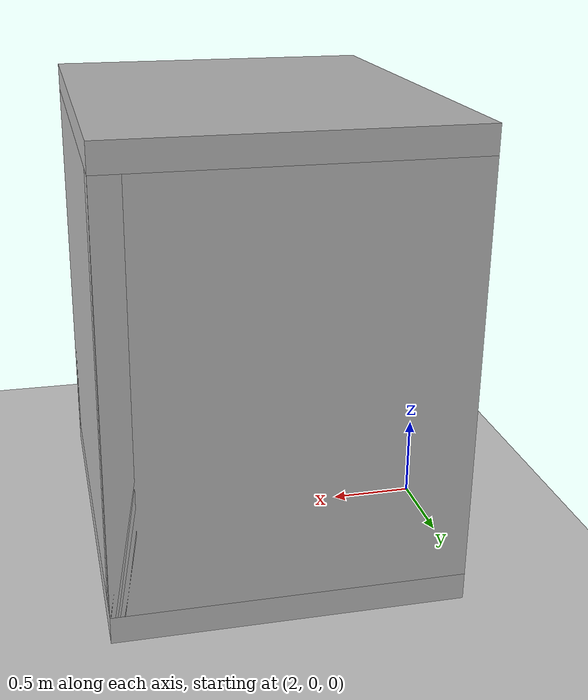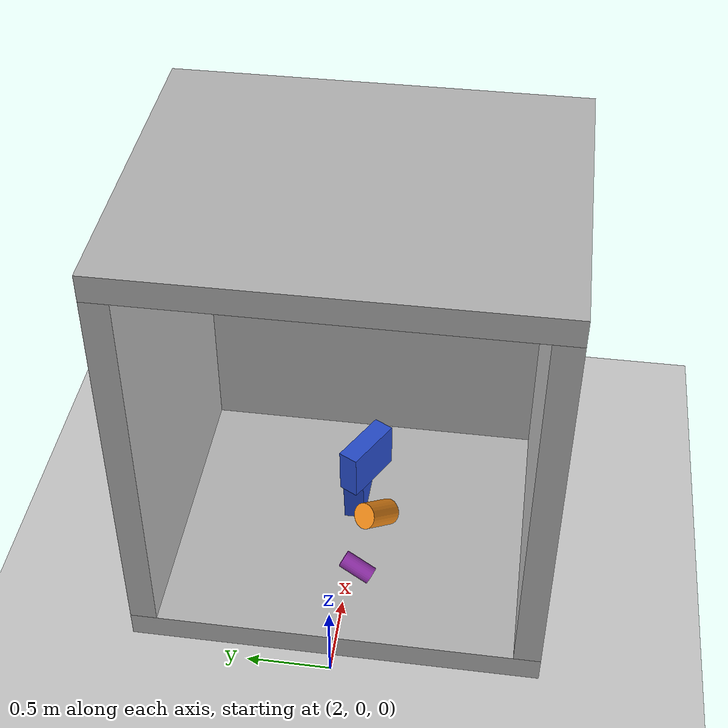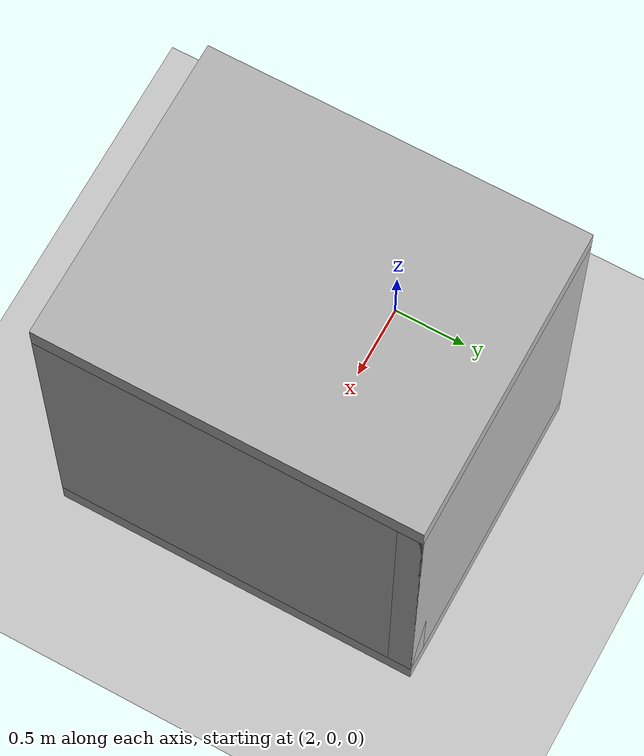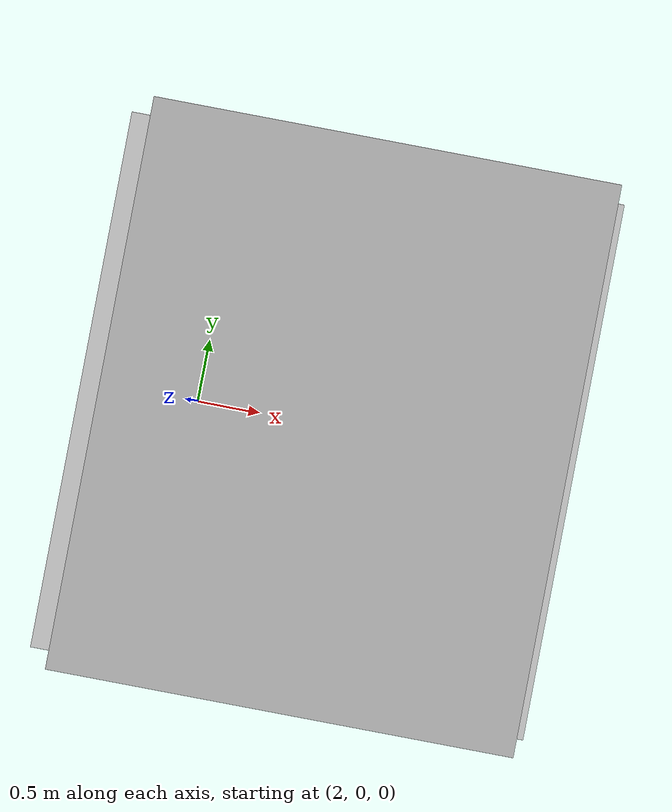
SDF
<sdf version="1.6">
 <world name="default">
  <light name="sun" type="directional">
   <pose>0 0 10 0 -0 0</pose>
   <diffuse>0.8 0.8 0.8 1</diffuse>
   <specular>0.1 0.1 0.1 1</specular>
   <attenuation>
    <range>1000</range>
    <constant>0.9</constant>
    <linear>0.01</linear>
    <quadratic>0.001</quadratic>
   </attenuation>
   <direction>-0.5 0.5 -1</direction>
  </light>
  <model name="ground_plane">
   <static>1</static>
   <link name="link">
    <collision name="collision">
     <geometry><plane><normal>0 0 1</normal><size>100 100</size></plane></geometry>
     <surface><friction><ode><mu>100</mu><mu2>50</mu2></ode></friction></surface>
    </collision>
    <visual name="visual">
     <cast_shadows>0</cast_shadows>
     <geometry><plane><normal>0 0 1</normal><size>100 100</size></plane></geometry>
     <material>
      <script><uri>file://media/materials/scripts/gazebo.material</uri><name>Gazebo/Grey</name></script>
     </material>
    </visual>
   </link>
  </model>
  <physics name="default_physics" default="0" type="ode">
   <real_time_update_rate>0</real_time_update_rate>
   <max_step_size>0.001</max_step_size>
   <real_time_factor>1</real_time_factor>
  </physics>
  <gravity>0 0 -9.8</gravity>
  <magnetic_field>6e-06 2.3e-05 -4.2e-05</magnetic_field>
  <atmosphere type="adiabatic"/>
  <scene><ambient>0.4 0.4 0.4 1</ambient><background>0.7 0.7 0.7 1</background><shadows>1</shadows></scene>
  <spherical_coordinates>
   <surface_model>EARTH_WGS84</surface_model>
   <latitude_deg>0</latitude_deg>
   <longitude_deg>0</longitude_deg>
   <elevation>0</elevation>
   <heading_deg>0</heading_deg>
  </spherical_coordinates>
  <model name="container">
   <link name="container">
    <inertial>
     <pose>0.22439 0 1.64098 0 -0 0</pose>
     <mass>205</mass>
     <inertia>
      <ixx>329.883</ixx>
      <ixy>1.59439e-15</ixy>
      <ixz>12.9249</ixz>
      <iyy>229.817</iyy>
      <iyz>1.16598e-14</iyz>
      <izz>267.609</izz>
     </inertia>
    </inertial>
    <collision name="container_back_collision">
     <pose>0.92 0 1.36 0 -0 0</pose>
     <geometry><box><size>0.16 2.45 2.4</size></box></geometry>
    </collision>
    <collision name="container_bottom_collision_1">
     <pose>0 0 0.08 0 -0 0</pose>
     <geometry><box><size>2 2.45 0.16</size></box></geometry>
    </collision>
    <collision name="container_left_collision_2">
     <pose>0 1.145 1.36 0 -0 0</pose>
     <geometry><box><size>2 0.16 2.4</size></box></geometry>
    </collision>
    <collision name="container_right_collision_3">
     <pose>0 -1.145 1.36 0 -0 0</pose>
     <geometry><box><size>2 0.16 2.4</size></box></geometry>
    </collision>
    <collision name="container_top_collision_4">
     <pose>0 0 2.64 0 -0 0</pose>
     <geometry><box><size>2 2.45 0.16</size></box></geometry>
    </collision>
    <visual name="container_back_visual">
     <pose>0.92 0 1.36 0 -0 0</pose>
     <geometry><box><size>0.16 2.45 2.4</size></box></geometry>
    </visual>
    <visual name="container_bottom_visual_1">
     <pose>0 0 0.08 0 -0 0</pose>
     <geometry><box><size>2 2.45 0.16</size></box></geometry>
    </visual>
    <visual name="container_left_visual_2">
     <pose>0 1.145 1.36 0 -0 0</pose>
     <geometry><box><size>2 0.16 2.4</size></box></geometry>
    </visual>
    <visual name="container_right_visual_3">
     <pose>0 -1.145 1.36 0 -0 0</pose>
     <geometry><box><size>2 0.16 2.4</size></box></geometry>
    </visual>
    <visual name="container_top_visual_4">
     <pose>0 0 2.64 0 -0 0</pose>
     <geometry><box><size>2 2.45 0.16</size></box></geometry>
    </visual>
   </link>
   <pose>3.10043 0.000461 1e-06 -0 1e-06 -0.000147</pose>
  </model>
  <model name="roblog-dhl-box-blue-simple-0-1608">
   <link name="link">
    <inertial>
     <mass>0.25</mass>
     <inertia>
      <ixx>0.00218083</ixx>
      <ixy>0</ixy>
      <ixz>0</ixz>
      <iyy>0.00473308</iyy>
      <iyz>0</iyz>
      <izz>0.00321375</izz>
     </inertia>
    </inertial>
    <collision name="link_collision"><geometry><box><size>0.372 0.126 0.298</size></box></geometry></collision>
    <visual name="link_visual">
     <geometry><box><size>0.372 0.126 0.298</size></box></geometry>
     <material>
      <script><name>Gazebo/Blue</name><uri>file://media/materials/scripts/gazebo.material</uri></script>
     </material>
    </visual>
   </link>
   <pose>3.26175 0.00751 0.312492 -0.030858 -0.009084 -0.022449</pose>
  </model>
  <model name="roblog-dhl-box-blue-simple-1-1609">
   <link name="link">
    <inertial>
     <mass>0.25</mass>
     <inertia>
      <ixx>0.00218083</ixx>
      <ixy>0</ixy>
      <ixz>0</ixz>
      <iyy>0.00473308</iyy>
      <iyz>0</iyz>
      <izz>0.00321375</izz>
     </inertia>
    </inertial>
    <collision name="link_collision"><geometry><box><size>0.372 0.126 0.298</size></box></geometry></collision>
    <visual name="link_visual">
     <geometry><box><size>0.372 0.126 0.298</size></box></geometry>
     <material>
      <script><name>Gazebo/Blue</name><uri>file://media/materials/scripts/gazebo.material</uri></script>
     </material>
    </visual>
   </link>
   <pose>3.17098 -0.052607 0.612384 0.000685 -0.018775 -0.509537</pose>
  </model>
  <model name="roblog-vanish-detergent-simple-2-1610">
   <link name="link">
    <inertial>
     <mass>0.08</mass>
     <inertia>
      <ixx>0.000324987</ixx>
      <ixy>0</ixy>
      <ixz>0</ixz>
      <iyy>0.000324987</iyy>
      <iyz>0</iyz>
      <izz>0.00011664</izz>
     </inertia>
    </inertial>
    <collision name="link_collision">
     <geometry><cylinder><length>0.2</length><radius>0.054</radius></cylinder></geometry>
    </collision>
    <visual name="link_visual">
     <geometry><cylinder><length>0.2</length><radius>0.054</radius></cylinder></geometry>
     <material>
      <script><name>Gazebo/PurpleGlow</name><uri>file://media/materials/scripts/gazebo.material</uri></script>
     </material>
    </visual>
    <velocity_decay><linear>0.005</linear><angular>0.005</angular></velocity_decay>
   </link>
   <pose>2.58619 -0.079624 0.247844 -0.997449 -0.798213 -0.717008</pose>
  </model>
  <model name="roblog-maisels-barrel-simple-3-1611">
   <link name="link">
    <inertial>
     <mass>0.54</mass>
     <inertia>
      <ixx>0.00354312</ixx>
      <ixy>0</ixy>
      <ixz>0</ixz>
      <iyy>0.00354312</iyy>
      <iyz>0</iyz>
      <izz>0.00181548</izz>
     </inertia>
    </inertial>
    <collision name="link_collision">
     <geometry><cylinder><length>0.242</length><radius>0.082</radius></cylinder></geometry>
    </collision>
    <visual name="link_visual">
     <geometry><cylinder><length>0.242</length><radius>0.082</radius></cylinder></geometry>
     <material>
      <script><name>Gazebo/Orange</name><uri>file://media/materials/scripts/gazebo.material</uri></script>
     </material>
    </visual>
    <velocity_decay><linear>0.005</linear><angular>0.005</angular></velocity_decay>
   </link>
   <pose>3.00287 -0.143626 0.288982 -0.296951 -1.06112 -0.349982</pose>
  </model>
 </world>
</sdf>
